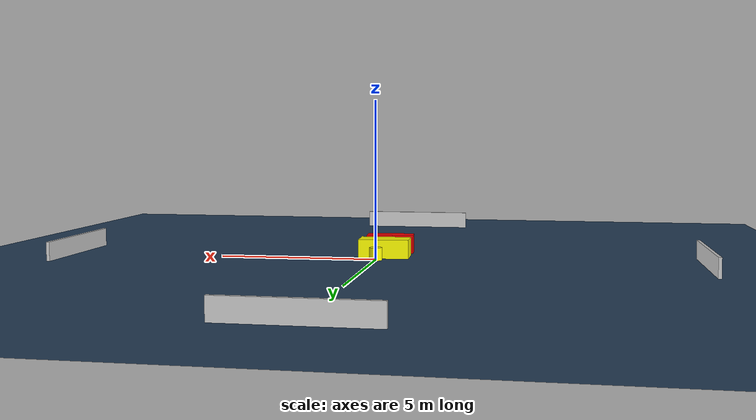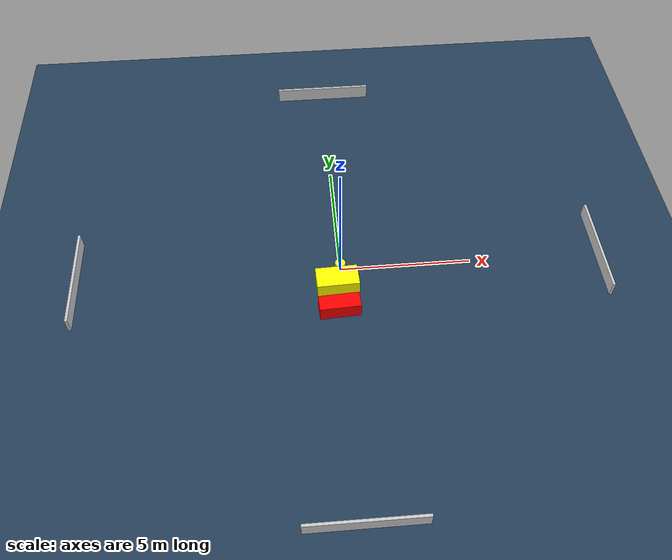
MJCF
<?xml version="1.0" ?>
<mujoco model="generated_environment">
  <option timestep="0.01" integrator="RK4" cone="elliptic"/>
  <default>
    <geom density="1"/>
  </default>
  <asset>
    <texture builtin="gradient" height="3072" name="skybox" rgb1="0.3 0.5 0.7" rgb2="0 0 0" type="skybox" width="512"/>
    <texture builtin="checker" height="300" name="groundplane" rgb1="0.2 0.3 0.4" rgb2="0.1 0.2 0.3" type="2d" width="300"/>
    <material name="groundplane" reflectance="0.2" texrepeat="5 5" texture="groundplane"/>
  </asset>
  <worldbody>
    <light dir="0 0 -1" directional="true" pos="0 0 1.5"/>
    <geom condim="3" friction="0.5 0.005 0.001" material="groundplane" name="floor" pos="0 0 0" size="0 0 0.05" type="plane"/>
    <body name="walls">
      <geom name="wall_1" condim="4" pos="-10.0 0.0 0.3" rgba="0.800000011920929 0.800000011920929 0.800000011920929 1.0" size="0.05 2.0 0.3" type="box"/>
      <geom name="wall_2" condim="4" pos="10.0 0.0 0.3" rgba="0.800000011920929 0.800000011920929 0.800000011920929 1.0" size="0.05 2.0 0.3" type="box"/>
      <geom name="wall_3" condim="4" pos="0.0 -10.0 0.3" rgba="0.800000011920929 0.800000011920929 0.800000011920929 1.0" size="2.0 0.05 0.3" type="box"/>
      <geom name="wall_4" condim="4" pos="0.0 10.0 0.3" rgba="0.800000011920929 0.800000011920929 0.800000011920929 1.0" size="2.0 0.05 0.3" type="box"/>
    </body>
    <body name="robot">
      <joint name="joint_x" type="slide" pos="0 0 0" axis="1 0 0"/>
      <joint name="joint_y" type="slide" pos="0 0 0" axis="0 1 0"/>
      <geom name="robot" type="cylinder" pos="0.0 0.0 0.2" size="0.2 0.2 0.0" mass="5.0" friction="1.0 0.005 0.0001" condim="4" rgba="1.0 1.0 0.0 1.0"/>
    </body>
    <body name="obstacle_1_movable">
      <geom name="obstacle_1_movable" condim="4" pos="-0.16921714646134292 -0.7574342604921546 0.3" euler="0 0 272.16166352780095" friction="0.0 0.005 0.001" rgba="1.0 1.0 0.0 1.0" size="0.43896909494970515 0.796285717250272 0.3" type="box" mass="0.1"/>
      <joint type="free"/>
    </body>
    <body name="obstacle_2_static">
      <geom name="obstacle_2_static" condim="4" pos="-0.17385101385135368 -1.9097587334407022 0.3" euler="0 0 3.220969184405882" friction="0.0 0.005 0.001" rgba="1.0 0.0 0.0 1.0" size="0.7633226205271477 0.31095964254483727 0.3" type="box"/>
    </body>
  </worldbody>
  <actuator>
    <motor name="actuator_x" joint="joint_x" gear="1" ctrlrange="-1 1"/>
    <motor name="actuator_y" joint="joint_y" gear="1" ctrlrange="-1 1"/>
  </actuator>
</mujoco>
